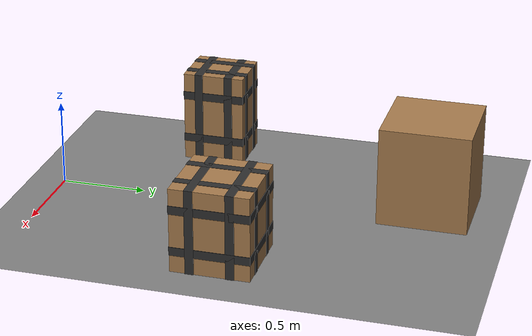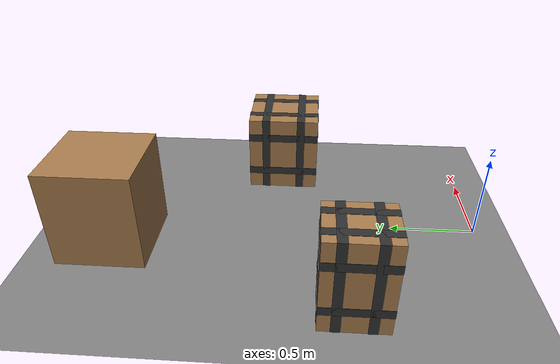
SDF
<sdf version="1.9">
 <world name="ecps295_lowbox_s13">
  <model name="ground_plane">
   <static>true</static>
   <link name="link">
    <collision name="collision">
     <geometry><plane><normal>0 0 1</normal><size>50 50</size></plane></geometry>
    </collision>
    <visual name="visual">
     <geometry><plane><normal>0 0 1</normal><size>50 50</size></plane></geometry>
     <material><ambient>0.5 0.5 0.5 1</ambient><diffuse>0.5 0.5 0.5 1</diffuse></material>
    </visual>
   </link>
  </model>
  <model name="lb0">
   <static>true</static>
   <pose>-0.21 2.17 0.292 0 0 0</pose>
   <link name="link">
    <collision name="c"><geometry><box><size>0.51 0.52 0.58</size></box></geometry></collision>
    <visual name="v">
     <geometry><box><size>0.51 0.52 0.58</size></box></geometry>
     <material><ambient>0.65 0.48 0.30 1</ambient><diffuse>0.65 0.48 0.30 1</diffuse></material>
    </visual>
   </link>
  </model>
  <model name="lb1">
   <static>true</static>
   <pose>-0.69 0.77 0.275 0 0 0</pose>
   <link name="link">
    <collision name="c"><geometry><box><size>0.32 0.37 0.55</size></box></geometry></collision>
    <visual name="v">
     <geometry><box><size>0.32 0.37 0.55</size></box></geometry>
     <material><ambient>0.65 0.48 0.30 1</ambient><diffuse>0.65 0.48 0.30 1</diffuse></material>
    </visual>
    <visual name="tape_ring0">
     <pose>0.000 0.000 -0.138 0 0 0</pose>
     <geometry><box><size>0.324 0.374 0.050</size></box></geometry>
     <material><ambient>0.18 0.18 0.18 1</ambient><diffuse>0.18 0.18 0.18 1</diffuse></material>
    </visual>
    <visual name="tape_bx0">
     <pose>-0.080 0.000 0.000 0 0 0</pose>
     <geometry><box><size>0.050 0.374 0.554</size></box></geometry>
     <material><ambient>0.18 0.18 0.18 1</ambient><diffuse>0.18 0.18 0.18 1</diffuse></material>
    </visual>
    <visual name="tape_by0">
     <pose>0.000 -0.092 0.000 0 0 0</pose>
     <geometry><box><size>0.324 0.050 0.554</size></box></geometry>
     <material><ambient>0.18 0.18 0.18 1</ambient><diffuse>0.18 0.18 0.18 1</diffuse></material>
    </visual>
    <visual name="tape_ring1">
     <pose>0.000 0.000 0.138 0 0 0</pose>
     <geometry><box><size>0.324 0.374 0.050</size></box></geometry>
     <material><ambient>0.18 0.18 0.18 1</ambient><diffuse>0.18 0.18 0.18 1</diffuse></material>
    </visual>
    <visual name="tape_bx1">
     <pose>0.080 0.000 0.000 0 0 0</pose>
     <geometry><box><size>0.050 0.374 0.554</size></box></geometry>
     <material><ambient>0.18 0.18 0.18 1</ambient><diffuse>0.18 0.18 0.18 1</diffuse></material>
    </visual>
    <visual name="tape_by1">
     <pose>0.000 0.092 0.000 0 0 0</pose>
     <geometry><box><size>0.324 0.050 0.554</size></box></geometry>
     <material><ambient>0.18 0.18 0.18 1</ambient><diffuse>0.18 0.18 0.18 1</diffuse></material>
    </visual>
   </link>
  </model>
  <model name="lb3">
   <static>true</static>
   <pose>0.67 1.19 0.245 0 0 0</pose>
   <link name="link">
    <collision name="c"><geometry><box><size>0.45 0.45 0.49</size></box></geometry></collision>
    <visual name="v">
     <geometry><box><size>0.45 0.45 0.49</size></box></geometry>
     <material><ambient>0.65 0.48 0.30 1</ambient><diffuse>0.65 0.48 0.30 1</diffuse></material>
    </visual>
    <visual name="tape_ring0">
     <pose>0.000 0.000 -0.122 0 0 0</pose>
     <geometry><box><size>0.454 0.454 0.050</size></box></geometry>
     <material><ambient>0.18 0.18 0.18 1</ambient><diffuse>0.18 0.18 0.18 1</diffuse></material>
    </visual>
    <visual name="tape_bx0">
     <pose>-0.113 0.000 0.000 0 0 0</pose>
     <geometry><box><size>0.050 0.454 0.494</size></box></geometry>
     <material><ambient>0.18 0.18 0.18 1</ambient><diffuse>0.18 0.18 0.18 1</diffuse></material>
    </visual>
    <visual name="tape_by0">
     <pose>0.000 -0.113 0.000 0 0 0</pose>
     <geometry><box><size>0.454 0.050 0.494</size></box></geometry>
     <material><ambient>0.18 0.18 0.18 1</ambient><diffuse>0.18 0.18 0.18 1</diffuse></material>
    </visual>
    <visual name="tape_ring1">
     <pose>0.000 0.000 0.122 0 0 0</pose>
     <geometry><box><size>0.454 0.454 0.050</size></box></geometry>
     <material><ambient>0.18 0.18 0.18 1</ambient><diffuse>0.18 0.18 0.18 1</diffuse></material>
    </visual>
    <visual name="tape_bx1">
     <pose>0.113 0.000 0.000 0 0 0</pose>
     <geometry><box><size>0.050 0.454 0.494</size></box></geometry>
     <material><ambient>0.18 0.18 0.18 1</ambient><diffuse>0.18 0.18 0.18 1</diffuse></material>
    </visual>
    <visual name="tape_by1">
     <pose>0.000 0.113 0.000 0 0 0</pose>
     <geometry><box><size>0.454 0.050 0.494</size></box></geometry>
     <material><ambient>0.18 0.18 0.18 1</ambient><diffuse>0.18 0.18 0.18 1</diffuse></material>
    </visual>
   </link>
  </model>
 </world>
</sdf>
